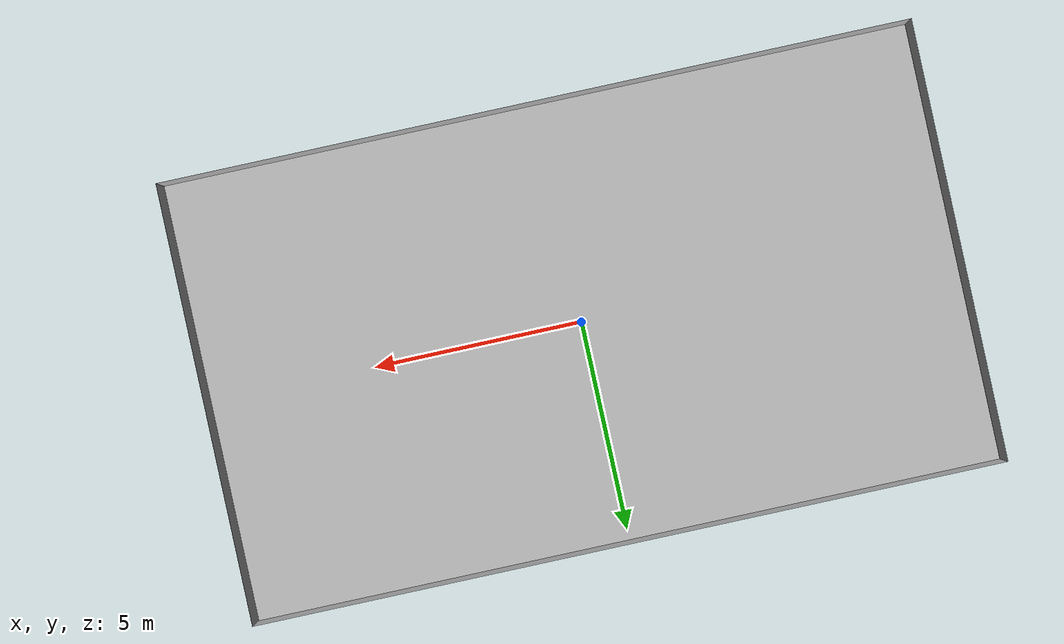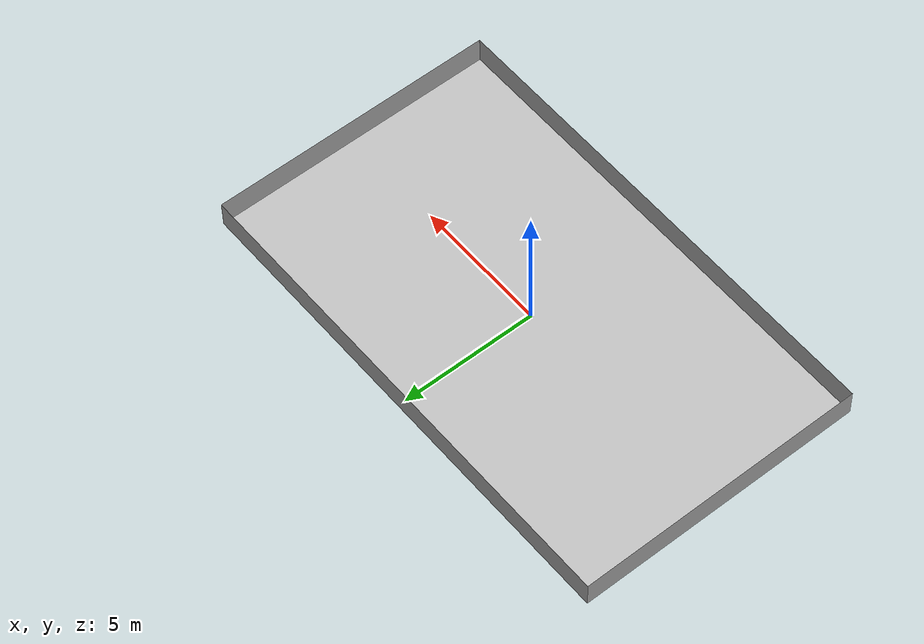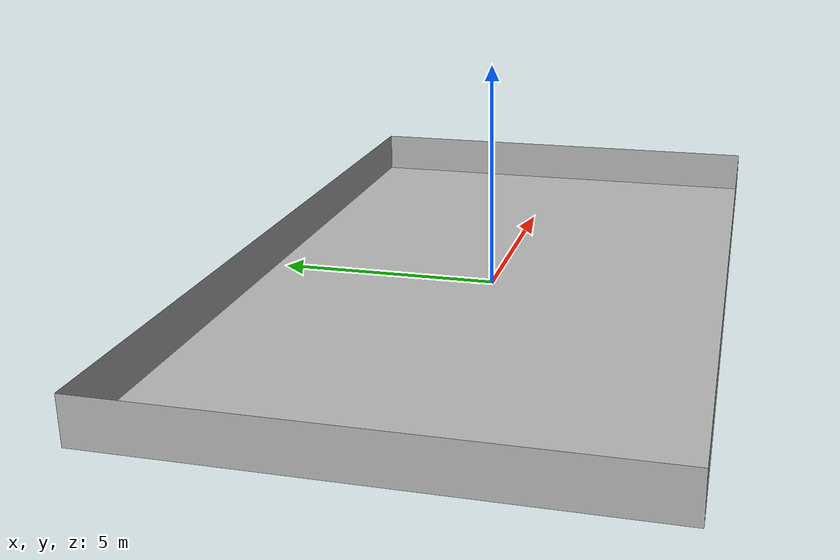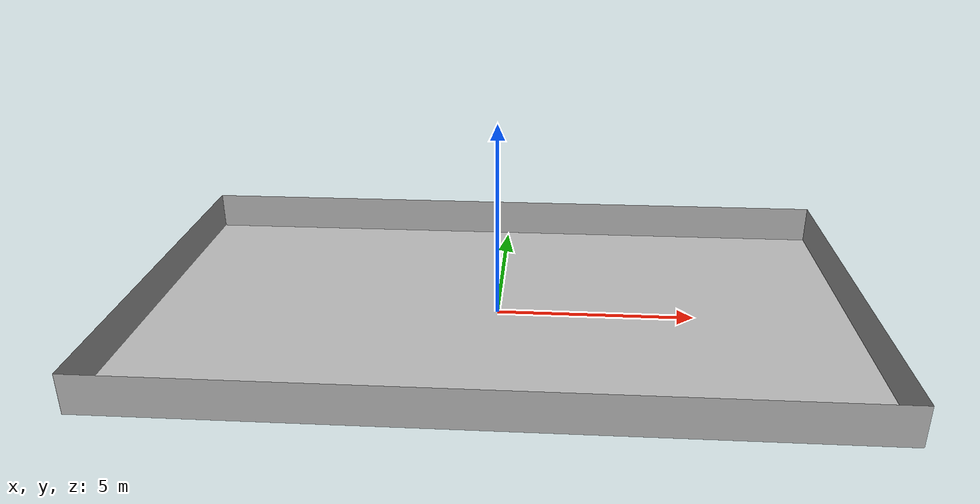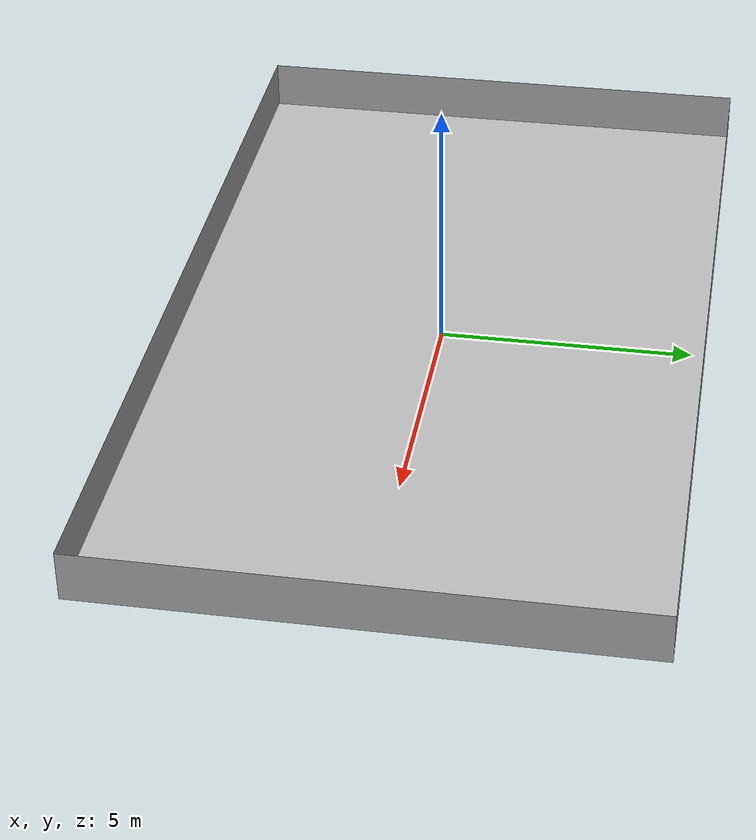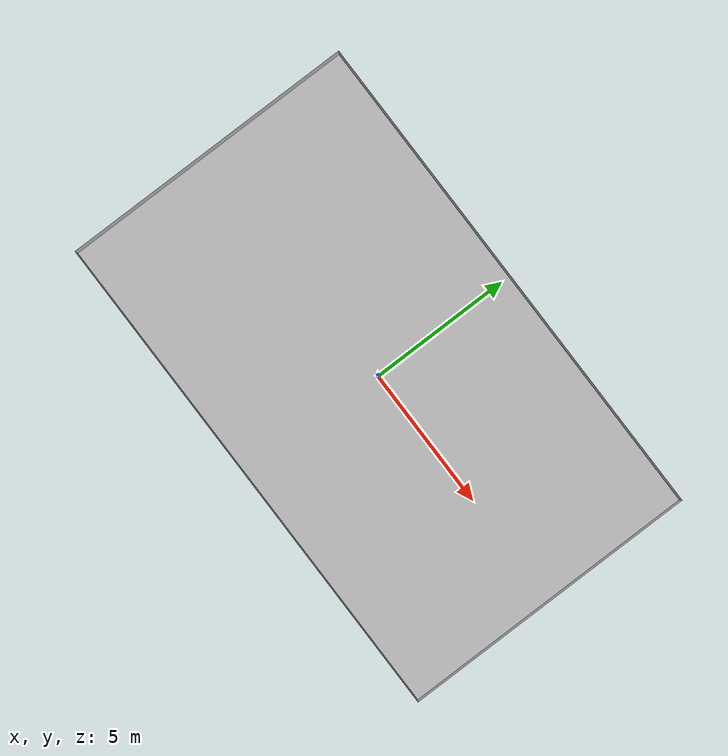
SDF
<?xml version='1.0' encoding='utf-8'?>
<sdf version="1.4">
<world name="jyllandsringen_open_ccw">
  <scene>
    <ambient>0.5 0.5 0.5 1.0</ambient>
    <shadows>0</shadows>
    <sky />
  </scene>
  <include>
    <uri>model://sun</uri>
    <pose>0.0 0.0 15.0 0 0 0</pose>
    <cast_shadows>false</cast_shadows>
    <attenuation>
      <constant>0.5</constant>
      <linear>0.01</linear>
      <quadratic>0.0</quadratic>
      <range>100</range>
    </attenuation>
  </include>
  <light name="Light 1" type="point">
         <pose>0 0 15 0 0 0</pose>
         <diffuse>0.225 0.225 0.225 1</diffuse>
         <specular>.1 .1 .1 1</specular>
         <attenuation>
                <constant>0.4</constant>
                <linear>0.01</linear>
                <quadratic>0.00</quadratic>
                <range>50</range>
         </attenuation>
         <direction>0 0 -1</direction>
         <cast_shadows>false</cast_shadows>
  </light>
  <include>
    <uri>model://models/jyllandsringen_open_ccw</uri>
    <pose>0 0 0 0 0 0</pose>
    <name>racetrack</name>
  </include>
</world>
</sdf>

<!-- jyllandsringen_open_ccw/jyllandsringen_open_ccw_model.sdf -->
<sdf version="1.4">
<model name="template_model">
<link name="track">
<collision name="collision">
<pose>0 0 0 0 0 0</pose>
<geometry>
<mesh>
<uri>model://meshes/jyllandsringen_open_ccw/jyllandsringen_open_ccw_collision.dae</uri>
</mesh>
</geometry>
</collision>
<visual name="visual">
<pose>0 0 0 0 0 0</pose>
<geometry>
<mesh>
<uri>model://meshes/jyllandsringen_open_ccw/jyllandsringen_open_ccw.dae</uri>
</mesh>
</geometry>
</visual>
</link>
<static>1</static>
</model>
</sdf>
